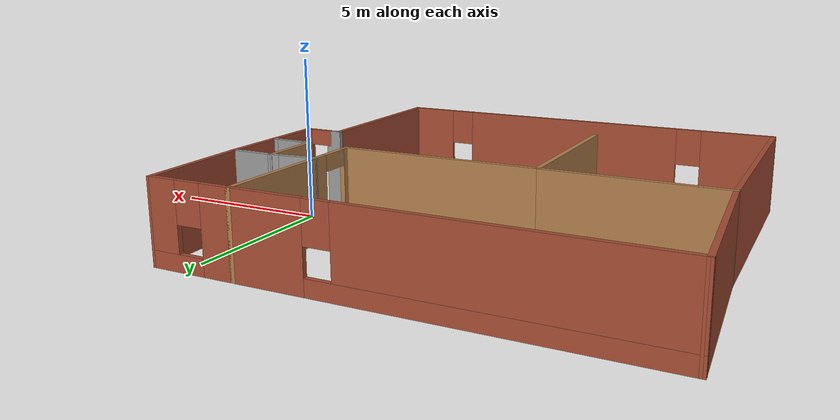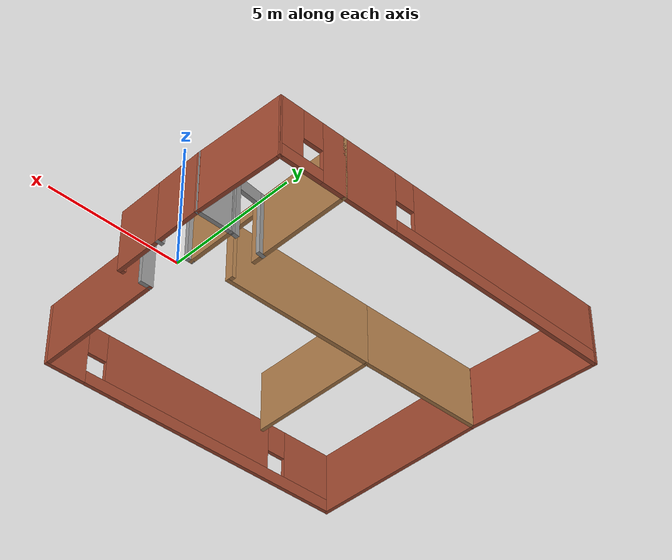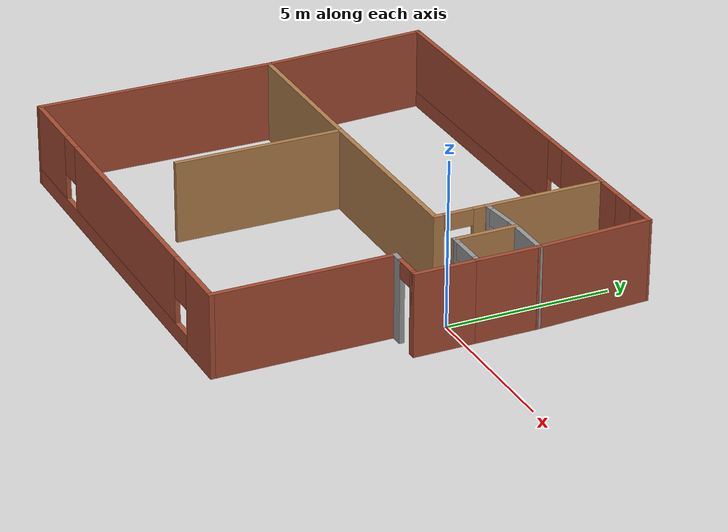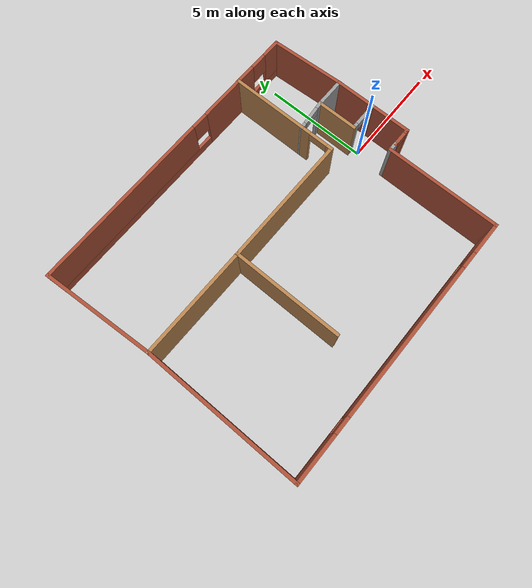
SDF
<?xml version='1.0'?>
<sdf version='1.6'>
  <model name='apt_64'>
    <pose frame=''>-6.11864 -0.586283 0 0 -0 0</pose>
    <link name='Wall_0'>
      <pose frame=''>6.76464 -0.909217 0 0 -0 3.14159</pose>
      <visual name='Wall_0_Visual_0'>
        <pose frame=''>-0.372611 0 1.25 0 -0 0</pose>
        <geometry>
          <box>
            <size>0.254778 0.15 2.5</size>
          </box>
        </geometry>
        <material>
          <script>
            <uri>file://media/materials/scripts/gazebo.material</uri>
            <name>Gazebo/Bricks</name>
          </script>
          <ambient>1 1 1 1</ambient>
        </material>
        <meta>
          <layer>0</layer>
        </meta>
      </visual>
      <collision name='Wall_0_Collision_0'>
        <geometry>
          <box>
            <size>0.254778 0.15 2.5</size>
          </box>
        </geometry>
        <pose frame=''>-0.372611 0 1.25 0 -0 0</pose>
      </collision>
      <visual name='Wall_0_Visual_1'>
        <pose frame=''>0.127389 0 2.25 0 -0 0</pose>
        <geometry>
          <box>
            <size>0.745222 0.15 0.5</size>
          </box>
        </geometry>
        <material>
          <script>
            <uri>file://media/materials/scripts/gazebo.material</uri>
            <name>Gazebo/Bricks</name>
          </script>
          <ambient>1 1 1 1</ambient>
        </material>
        <meta>
          <layer>0</layer>
        </meta>
      </visual>
      <collision name='Wall_0_Collision_1'>
        <geometry>
          <box>
            <size>0.745222 0.15 0.5</size>
          </box>
        </geometry>
        <pose frame=''>0.127389 0 2.25 0 -0 0</pose>
      </collision>
    </link>
    <link name='Wall_10'>
      <collision name='Wall_10_Collision'>
        <geometry>
          <box>
            <size>2 0.15 2.5</size>
          </box>
        </geometry>
        <pose frame=''>0 0 1.25 0 -0 0</pose>
      </collision>
      <visual name='Wall_10_Visual'>
        <pose frame=''>0 0 1.25 0 -0 0</pose>
        <geometry>
          <box>
            <size>2 0.15 2.5</size>
          </box>
        </geometry>
        <material>
          <script>
            <uri>file://media/materials/scripts/gazebo.material</uri>
            <name>Gazebo/Bricks</name>
          </script>
          <ambient>1 1 1 1</ambient>
        </material>
        <meta>
          <layer>0</layer>
        </meta>
      </visual>
      <pose frame=''>7.18964 1.86578 0 0 -0 1.5708</pose>
    </link>
    <link name='Wall_11'>
      <collision name='Wall_11_Collision'>
        <geometry>
          <box>
            <size>1.5 0.15 2.5</size>
          </box>
        </geometry>
        <pose frame=''>0 0 1.25 0 -0 0</pose>
      </collision>
      <visual name='Wall_11_Visual'>
        <pose frame=''>0 0 1.25 0 -0 0</pose>
        <geometry>
          <box>
            <size>1.5 0.15 2.5</size>
          </box>
        </geometry>
        <material>
          <script>
            <uri>file://media/materials/scripts/gazebo.material</uri>
            <name>Gazebo/Grey</name>
          </script>
          <ambient>1 1 1 1</ambient>
        </material>
        <meta>
          <layer>0</layer>
        </meta>
      </visual>
      <pose frame=''>6.51464 2.79078 0 0 -0 3.14159</pose>
    </link>
    <link name='Wall_12'>
      <collision name='Wall_12_Collision'>
        <geometry>
          <box>
            <size>2 0.15 2.5</size>
          </box>
        </geometry>
        <pose frame=''>0 0 1.25 0 -0 0</pose>
      </collision>
      <visual name='Wall_12_Visual'>
        <pose frame=''>0 0 1.25 0 -0 0</pose>
        <geometry>
          <box>
            <size>2 0.15 2.5</size>
          </box>
        </geometry>
        <material>
          <script>
            <uri>file://media/materials/scripts/gazebo.material</uri>
            <name>Gazebo/Wood</name>
          </script>
          <ambient>1 1 1 1</ambient>
        </material>
        <meta>
          <layer>0</layer>
        </meta>
      </visual>
      <pose frame=''>5.83964 1.86578 0 0 0 -1.5708</pose>
    </link>
    <link name='Wall_15'>
      <collision name='Wall_15_Collision'>
        <geometry>
          <box>
            <size>5.5 0.15 2.5</size>
          </box>
        </geometry>
        <pose frame=''>0 0 1.25 0 -0 0</pose>
      </collision>
      <visual name='Wall_15_Visual'>
        <pose frame=''>0 0 1.25 0 -0 0</pose>
        <geometry>
          <box>
            <size>5.5 0.15 2.5</size>
          </box>
        </geometry>
        <material>
          <script>
            <uri>file://media/materials/scripts/gazebo.material</uri>
            <name>Gazebo/Bricks</name>
          </script>
          <ambient>1 1 1 1</ambient>
        </material>
        <meta>
          <layer>0</layer>
        </meta>
      </visual>
      <pose frame=''>5.98964 -3.58422 0 0 0 -1.5708</pose>
    </link>
    <link name='Wall_18'>
      <pose frame=''>4.41121 1.85461 0 0 -0 1.5708</pose>
      <visual name='Wall_18_Visual_0'>
        <pose frame=''>-0.712699 0 1.25 0 -0 0</pose>
        <geometry>
          <box>
            <size>0.324603 0.15 2.5</size>
          </box>
        </geometry>
        <material>
          <script>
            <uri>file://media/materials/scripts/gazebo.material</uri>
            <name>Gazebo/Wood</name>
          </script>
          <ambient>1 1 1 1</ambient>
        </material>
        <meta>
          <layer>0</layer>
        </meta>
      </visual>
      <collision name='Wall_18_Collision_0'>
        <geometry>
          <box>
            <size>0.324603 0.15 2.5</size>
          </box>
        </geometry>
        <pose frame=''>-0.712699 0 1.25 0 -0 0</pose>
      </collision>
      <visual name='Wall_18_Visual_1'>
        <pose frame=''>0.612301 0 1.25 0 -0 0</pose>
        <geometry>
          <box>
            <size>0.525397 0.15 2.5</size>
          </box>
        </geometry>
        <material>
          <script>
            <uri>file://media/materials/scripts/gazebo.material</uri>
            <name>Gazebo/Wood</name>
          </script>
          <ambient>1 1 1 1</ambient>
        </material>
        <meta>
          <layer>0</layer>
        </meta>
      </visual>
      <collision name='Wall_18_Collision_1'>
        <geometry>
          <box>
            <size>0.525397 0.15 2.5</size>
          </box>
        </geometry>
        <pose frame=''>0.612301 0 1.25 0 -0 0</pose>
      </collision>
      <visual name='Wall_18_Visual_2'>
        <pose frame=''>-0.100397 0 2.25 0 -0 0</pose>
        <geometry>
          <box>
            <size>0.9 0.15 0.5</size>
          </box>
        </geometry>
        <material>
          <script>
            <uri>file://media/materials/scripts/gazebo.material</uri>
            <name>Gazebo/Wood</name>
          </script>
          <ambient>1 1 1 1</ambient>
        </material>
        <meta>
          <layer>0</layer>
        </meta>
      </visual>
      <collision name='Wall_18_Collision_2'>
        <geometry>
          <box>
            <size>0.9 0.15 0.5</size>
          </box>
        </geometry>
        <pose frame=''>-0.100397 0 2.25 0 -0 0</pose>
      </collision>
    </link>
    <link name='Wall_20'>
      <collision name='Wall_20_Collision'>
        <geometry>
          <box>
            <size>6.25 0.15 2.5</size>
          </box>
        </geometry>
        <pose frame=''>0 0 1.25 0 -0 0</pose>
      </collision>
      <visual name='Wall_20_Visual'>
        <pose frame=''>0 0 1.25 0 -0 0</pose>
        <geometry>
          <box>
            <size>6.25 0.15 2.5</size>
          </box>
        </geometry>
        <material>
          <script>
            <uri>file://media/materials/scripts/gazebo.material</uri>
            <name>Gazebo/Wood</name>
          </script>
          <ambient>1 1 1 1</ambient>
        </material>
        <meta>
          <layer>0</layer>
        </meta>
      </visual>
      <pose frame=''>1.36121 1.05461 0 0 -0 3.14159</pose>
    </link>
    <link name='Wall_22'>
      <pose frame=''>5.12542 2.7227 0 0 -0 0.095045</pose>
      <visual name='Wall_22_Visual_0'>
        <pose frame=''>-0.629635 0 1.25 0 -0 0</pose>
        <geometry>
          <box>
            <size>0.325627 0.15 2.5</size>
          </box>
        </geometry>
        <material>
          <script>
            <uri>file://media/materials/scripts/gazebo.material</uri>
            <name>Gazebo/Grey</name>
          </script>
          <ambient>1 1 1 1</ambient>
        </material>
        <meta>
          <layer>0</layer>
        </meta>
      </visual>
      <collision name='Wall_22_Collision_0'>
        <geometry>
          <box>
            <size>0.325627 0.15 2.5</size>
          </box>
        </geometry>
        <pose frame=''>-0.629635 0 1.25 0 -0 0</pose>
      </collision>
      <visual name='Wall_22_Visual_1'>
        <pose frame=''>0.612813 0 1.25 0 -0 0</pose>
        <geometry>
          <box>
            <size>0.359271 0.15 2.5</size>
          </box>
        </geometry>
        <material>
          <script>
            <uri>file://media/materials/scripts/gazebo.material</uri>
            <name>Gazebo/Grey</name>
          </script>
          <ambient>1 1 1 1</ambient>
        </material>
        <meta>
          <layer>0</layer>
        </meta>
      </visual>
      <collision name='Wall_22_Collision_1'>
        <geometry>
          <box>
            <size>0.359271 0.15 2.5</size>
          </box>
        </geometry>
        <pose frame=''>0.612813 0 1.25 0 -0 0</pose>
      </collision>
      <visual name='Wall_22_Visual_2'>
        <pose frame=''>-0.016822 0 2.25 0 -0 0</pose>
        <geometry>
          <box>
            <size>0.9 0.15 0.5</size>
          </box>
        </geometry>
        <material>
          <script>
            <uri>file://media/materials/scripts/gazebo.material</uri>
            <name>Gazebo/Grey</name>
          </script>
          <ambient>1 1 1 1</ambient>
        </material>
        <meta>
          <layer>0</layer>
        </meta>
      </visual>
      <collision name='Wall_22_Collision_2'>
        <geometry>
          <box>
            <size>0.9 0.15 0.5</size>
          </box>
        </geometry>
        <pose frame=''>-0.016822 0 2.25 0 -0 0</pose>
      </collision>
    </link>
    <link name='Wall_24'>
      <collision name='Wall_24_Collision'>
        <geometry>
          <box>
            <size>3.75 0.15 2.5</size>
          </box>
        </geometry>
        <pose frame=''>0 0 1.25 0 -0 0</pose>
      </collision>
      <visual name='Wall_24_Visual'>
        <pose frame=''>0 0 1.25 0 -0 0</pose>
        <geometry>
          <box>
            <size>3.75 0.15 2.5</size>
          </box>
        </geometry>
        <material>
          <script>
            <uri>file://media/materials/scripts/gazebo.material</uri>
            <name>Gazebo/Wood</name>
          </script>
          <ambient>1 1 1 1</ambient>
        </material>
        <meta>
          <layer>0</layer>
        </meta>
      </visual>
      <pose frame=''>4.41121 4.45461 0 0 -0 1.5708</pose>
    </link>
    <link name='Wall_25'>
      <pose frame=''>5.71121 6.25461 0 0 -0 0</pose>
      <visual name='Wall_25_Visual_0'>
        <pose frame=''>-0.872878 0 1.25 0 -0 0</pose>
        <geometry>
          <box>
            <size>1.00425 0.15 2.5</size>
          </box>
        </geometry>
        <material>
          <script>
            <uri>file://media/materials/scripts/gazebo.material</uri>
            <name>Gazebo/Bricks</name>
          </script>
          <ambient>1 1 1 1</ambient>
        </material>
        <meta>
          <layer>0</layer>
        </meta>
      </visual>
      <collision name='Wall_25_Collision_0'>
        <geometry>
          <box>
            <size>1.00425 0.15 2.5</size>
          </box>
        </geometry>
        <pose frame=''>-0.872878 0 1.25 0 -0 0</pose>
      </collision>
      <visual name='Wall_25_Visual_1'>
        <pose frame=''>0.502122 0 0.25 0 -0 0</pose>
        <geometry>
          <box>
            <size>1.74575 0.15 0.5</size>
          </box>
        </geometry>
        <material>
          <script>
            <uri>file://media/materials/scripts/gazebo.material</uri>
            <name>Gazebo/Bricks</name>
          </script>
          <ambient>1 1 1 1</ambient>
        </material>
        <meta>
          <layer>0</layer>
        </meta>
      </visual>
      <collision name='Wall_25_Collision_1'>
        <geometry>
          <box>
            <size>1.74575 0.15 0.5</size>
          </box>
        </geometry>
        <pose frame=''>0.502122 0 0.25 0 -0 0</pose>
      </collision>
      <visual name='Wall_25_Visual_2'>
        <pose frame=''>0.902122 0 1.5 0 -0 0</pose>
        <geometry>
          <box>
            <size>0.945755 0.15 2</size>
          </box>
        </geometry>
        <material>
          <script>
            <uri>file://media/materials/scripts/gazebo.material</uri>
            <name>Gazebo/Bricks</name>
          </script>
          <ambient>1 1 1 1</ambient>
        </material>
        <meta>
          <layer>0</layer>
        </meta>
      </visual>
      <collision name='Wall_25_Collision_2'>
        <geometry>
          <box>
            <size>0.945755 0.15 2</size>
          </box>
        </geometry>
        <pose frame=''>0.902122 0 1.5 0 -0 0</pose>
      </collision>
      <visual name='Wall_25_Visual_3'>
        <pose frame=''>0.029245 0 1.9 0 -0 0</pose>
        <geometry>
          <box>
            <size>0.8 0.15 1.2</size>
          </box>
        </geometry>
        <material>
          <script>
            <uri>file://media/materials/scripts/gazebo.material</uri>
            <name>Gazebo/Bricks</name>
          </script>
          <ambient>1 1 1 1</ambient>
        </material>
        <meta>
          <layer>0</layer>
        </meta>
      </visual>
      <collision name='Wall_25_Collision_3'>
        <geometry>
          <box>
            <size>0.8 0.15 1.2</size>
          </box>
        </geometry>
        <pose frame=''>0.029245 0 1.9 0 -0 0</pose>
      </collision>
    </link>
    <link name='Wall_26'>
      <collision name='Wall_26_Collision'>
        <geometry>
          <box>
            <size>3.61842 0.15 2.5</size>
          </box>
        </geometry>
        <pose frame=''>0 0 1.25 0 -0 0</pose>
      </collision>
      <visual name='Wall_26_Visual'>
        <pose frame=''>0 0 1.25 0 -0 0</pose>
        <geometry>
          <box>
            <size>3.61842 0.15 2.5</size>
          </box>
        </geometry>
        <material>
          <script>
            <uri>file://media/materials/scripts/gazebo.material</uri>
            <name>Gazebo/Bricks</name>
          </script>
          <ambient>1 1 1 1</ambient>
        </material>
        <meta>
          <layer>0</layer>
        </meta>
      </visual>
      <pose frame=''>7.10043 4.5227 0 0 0 -1.51933</pose>
    </link>
    <link name='Wall_28'>
      <pose frame=''>-0.435364 -6.25922 0 0 -0 3.14159</pose>
      <visual name='Wall_28_Visual_0'>
        <pose frame=''>-5.69839 0 1.25 0 -0 0</pose>
        <geometry>
          <box>
            <size>1.60322 0.15 2.5</size>
          </box>
        </geometry>
        <material>
          <script>
            <uri>file://media/materials/scripts/gazebo.material</uri>
            <name>Gazebo/Bricks</name>
          </script>
          <ambient>1 1 1 1</ambient>
        </material>
        <meta>
          <layer>0</layer>
        </meta>
      </visual>
      <collision name='Wall_28_Collision_0'>
        <geometry>
          <box>
            <size>1.60322 0.15 2.5</size>
          </box>
        </geometry>
        <pose frame=''>-5.69839 0 1.25 0 -0 0</pose>
      </collision>
      <visual name='Wall_28_Visual_1'>
        <pose frame=''>0.801611 0 0.25 0 -0 0</pose>
        <geometry>
          <box>
            <size>11.3968 0.15 0.5</size>
          </box>
        </geometry>
        <material>
          <script>
            <uri>file://media/materials/scripts/gazebo.material</uri>
            <name>Gazebo/Bricks</name>
          </script>
          <ambient>1 1 1 1</ambient>
        </material>
        <meta>
          <layer>0</layer>
        </meta>
      </visual>
      <collision name='Wall_28_Collision_1'>
        <geometry>
          <box>
            <size>11.3968 0.15 0.5</size>
          </box>
        </geometry>
        <pose frame=''>0.801611 0 0.25 0 -0 0</pose>
      </collision>
      <visual name='Wall_28_Visual_2'>
        <pose frame=''>-0.351632 0 1.5 0 -0 0</pose>
        <geometry>
          <box>
            <size>7.49029 0.15 2</size>
          </box>
        </geometry>
        <material>
          <script>
            <uri>file://media/materials/scripts/gazebo.material</uri>
            <name>Gazebo/Bricks</name>
          </script>
          <ambient>1 1 1 1</ambient>
        </material>
        <meta>
          <layer>0</layer>
        </meta>
      </visual>
      <collision name='Wall_28_Collision_2'>
        <geometry>
          <box>
            <size>7.49029 0.15 2</size>
          </box>
        </geometry>
        <pose frame=''>-0.351632 0 1.5 0 -0 0</pose>
      </collision>
      <visual name='Wall_28_Visual_3'>
        <pose frame=''>5.34676 0 1.5 0 -0 0</pose>
        <geometry>
          <box>
            <size>2.30649 0.15 2</size>
          </box>
        </geometry>
        <material>
          <script>
            <uri>file://media/materials/scripts/gazebo.material</uri>
            <name>Gazebo/Bricks</name>
          </script>
          <ambient>1 1 1 1</ambient>
        </material>
        <meta>
          <layer>0</layer>
        </meta>
      </visual>
      <collision name='Wall_28_Collision_3'>
        <geometry>
          <box>
            <size>2.30649 0.15 2</size>
          </box>
        </geometry>
        <pose frame=''>5.34676 0 1.5 0 -0 0</pose>
      </collision>
      <visual name='Wall_28_Visual_4'>
        <pose frame=''>-4.49678 0 1.9 0 -0 0</pose>
        <geometry>
          <box>
            <size>0.8 0.15 1.2</size>
          </box>
        </geometry>
        <material>
          <script>
            <uri>file://media/materials/scripts/gazebo.material</uri>
            <name>Gazebo/Bricks</name>
          </script>
          <ambient>1 1 1 1</ambient>
        </material>
        <meta>
          <layer>0</layer>
        </meta>
      </visual>
      <collision name='Wall_28_Collision_4'>
        <geometry>
          <box>
            <size>0.8 0.15 1.2</size>
          </box>
        </geometry>
        <pose frame=''>-4.49678 0 1.9 0 -0 0</pose>
      </collision>
      <visual name='Wall_28_Visual_5'>
        <pose frame=''>3.79351 0 1.9 0 -0 0</pose>
        <geometry>
          <box>
            <size>0.8 0.15 1.2</size>
          </box>
        </geometry>
        <material>
          <script>
            <uri>file://media/materials/scripts/gazebo.material</uri>
            <name>Gazebo/Bricks</name>
          </script>
          <ambient>1 1 1 1</ambient>
        </material>
        <meta>
          <layer>0</layer>
        </meta>
      </visual>
      <collision name='Wall_28_Collision_5'>
        <geometry>
          <box>
            <size>0.8 0.15 1.2</size>
          </box>
        </geometry>
        <pose frame=''>3.79351 0 1.9 0 -0 0</pose>
      </collision>
    </link>
    <link name='Wall_3'>
      <collision name='Wall_3_Collision'>
        <geometry>
          <box>
            <size>2 0.15 2.5</size>
          </box>
        </geometry>
        <pose frame=''>0 0 1.25 0 -0 0</pose>
      </collision>
      <visual name='Wall_3_Visual'>
        <pose frame=''>0 0 1.25 0 -0 0</pose>
        <geometry>
          <box>
            <size>2 0.15 2.5</size>
          </box>
        </geometry>
        <material>
          <script>
            <uri>file://media/materials/scripts/gazebo.material</uri>
            <name>Gazebo/Bricks</name>
          </script>
          <ambient>1 1 1 1</ambient>
        </material>
        <meta>
          <layer>0</layer>
        </meta>
      </visual>
      <pose frame=''>7.18964 0.015783 0 0 -0 1.5708</pose>
    </link>
    <link name='Wall_30'>
      <collision name='Wall_30_Collision'>
        <geometry>
          <box>
            <size>5.25 0.15 2.5</size>
          </box>
        </geometry>
        <pose frame=''>0 0 1.25 0 -0 0</pose>
      </collision>
      <visual name='Wall_30_Visual'>
        <pose frame=''>0 0 1.25 0 -0 0</pose>
        <geometry>
          <box>
            <size>5.25 0.15 2.5</size>
          </box>
        </geometry>
        <material>
          <script>
            <uri>file://media/materials/scripts/gazebo.material</uri>
            <name>Gazebo/Wood</name>
          </script>
          <ambient>1 1 1 1</ambient>
        </material>
        <meta>
          <layer>0</layer>
        </meta>
      </visual>
      <pose frame=''>-1.68879 -1.49539 0 0 0 -1.5708</pose>
    </link>
    <link name='Wall_33'>
      <collision name='Wall_33_Collision'>
        <geometry>
          <box>
            <size>7.5 0.15 2.5</size>
          </box>
        </geometry>
        <pose frame=''>0 0 1.25 0 -0 0</pose>
      </collision>
      <visual name='Wall_33_Visual'>
        <pose frame=''>0 0 1.25 0 -0 0</pose>
        <geometry>
          <box>
            <size>7.5 0.15 2.5</size>
          </box>
        </geometry>
        <material>
          <script>
            <uri>file://media/materials/scripts/gazebo.material</uri>
            <name>Gazebo/Bricks</name>
          </script>
          <ambient>1 1 1 1</ambient>
        </material>
        <meta>
          <layer>0</layer>
        </meta>
      </visual>
      <pose frame=''>-6.86036 -2.58422 0 0 -0 1.5708</pose>
    </link>
    <link name='Wall_35'>
      <collision name='Wall_35_Collision'>
        <geometry>
          <box>
            <size>5.3217 0.15 2.5</size>
          </box>
        </geometry>
        <pose frame=''>0 0 1.25 0 -0 0</pose>
      </collision>
      <visual name='Wall_35_Visual'>
        <pose frame=''>0 0 1.25 0 -0 0</pose>
        <geometry>
          <box>
            <size>5.3217 0.15 2.5</size>
          </box>
        </geometry>
        <material>
          <script>
            <uri>file://media/materials/scripts/gazebo.material</uri>
            <name>Gazebo/Wood</name>
          </script>
          <ambient>1 1 1 1</ambient>
        </material>
        <meta>
          <layer>0</layer>
        </meta>
      </visual>
      <pose frame=''>-4.27457 1.0727 0 0 0 -0.006995</pose>
    </link>
    <link name='Wall_37'>
      <pose frame=''>-1.38879 6.25461 0 0 -0 3.14159</pose>
      <visual name='Wall_37_Visual_0'>
        <pose frame=''>-4.74324 0 1.25 0 -0 0</pose>
        <geometry>
          <box>
            <size>2.26353 0.15 2.5</size>
          </box>
        </geometry>
        <material>
          <script>
            <uri>file://media/materials/scripts/gazebo.material</uri>
            <name>Gazebo/Bricks</name>
          </script>
          <ambient>1 1 1 1</ambient>
        </material>
        <meta>
          <layer>0</layer>
        </meta>
      </visual>
      <collision name='Wall_37_Collision_0'>
        <geometry>
          <box>
            <size>2.26353 0.15 2.5</size>
          </box>
        </geometry>
        <pose frame=''>-4.74324 0 1.25 0 -0 0</pose>
      </collision>
      <visual name='Wall_37_Visual_1'>
        <pose frame=''>1.13176 0 0.25 0 -0 0</pose>
        <geometry>
          <box>
            <size>9.48647 0.15 0.5</size>
          </box>
        </geometry>
        <material>
          <script>
            <uri>file://media/materials/scripts/gazebo.material</uri>
            <name>Gazebo/Bricks</name>
          </script>
          <ambient>1 1 1 1</ambient>
        </material>
        <meta>
          <layer>0</layer>
        </meta>
      </visual>
      <collision name='Wall_37_Collision_1'>
        <geometry>
          <box>
            <size>9.48647 0.15 0.5</size>
          </box>
        </geometry>
        <pose frame=''>1.13176 0 0.25 0 -0 0</pose>
      </collision>
      <visual name='Wall_37_Visual_2'>
        <pose frame=''>1.53177 0 1.5 0 -0 0</pose>
        <geometry>
          <box>
            <size>8.68647 0.15 2</size>
          </box>
        </geometry>
        <material>
          <script>
            <uri>file://media/materials/scripts/gazebo.material</uri>
            <name>Gazebo/Bricks</name>
          </script>
          <ambient>1 1 1 1</ambient>
        </material>
        <meta>
          <layer>0</layer>
        </meta>
      </visual>
      <collision name='Wall_37_Collision_2'>
        <geometry>
          <box>
            <size>8.68647 0.15 2</size>
          </box>
        </geometry>
        <pose frame=''>1.53177 0 1.5 0 -0 0</pose>
      </collision>
      <visual name='Wall_37_Visual_3'>
        <pose frame=''>-3.21147 0 1.9 0 -0 0</pose>
        <geometry>
          <box>
            <size>0.8 0.15 1.2</size>
          </box>
        </geometry>
        <material>
          <script>
            <uri>file://media/materials/scripts/gazebo.material</uri>
            <name>Gazebo/Bricks</name>
          </script>
          <ambient>1 1 1 1</ambient>
        </material>
        <meta>
          <layer>0</layer>
        </meta>
      </visual>
      <collision name='Wall_37_Collision_3'>
        <geometry>
          <box>
            <size>0.8 0.15 1.2</size>
          </box>
        </geometry>
        <pose frame=''>-3.21147 0 1.9 0 -0 0</pose>
      </collision>
    </link>
    <link name='Wall_38'>
      <collision name='Wall_38_Collision'>
        <geometry>
          <box>
            <size>5.32426 0.15 2.5</size>
          </box>
        </geometry>
        <pose frame=''>0 0 1.25 0 -0 0</pose>
      </collision>
      <visual name='Wall_38_Visual'>
        <pose frame=''>0 0 1.25 0 -0 0</pose>
        <geometry>
          <box>
            <size>5.32426 0.15 2.5</size>
          </box>
        </geometry>
        <material>
          <script>
            <uri>file://media/materials/scripts/gazebo.material</uri>
            <name>Gazebo/Bricks</name>
          </script>
          <ambient>1 1 1 1</ambient>
        </material>
        <meta>
          <layer>0</layer>
        </meta>
      </visual>
      <pose frame=''>-7.02457 3.6727 0 0 0 -1.50728</pose>
    </link>
    <link name='Wall_5'>
      <pose frame=''>6.51464 0.940783 0 0 -0 3.14159</pose>
      <visual name='Wall_5_Visual_0'>
        <pose frame=''>-0.609386 0 1.25 0 -0 0</pose>
        <geometry>
          <box>
            <size>0.281227 0.15 2.5</size>
          </box>
        </geometry>
        <material>
          <script>
            <uri>file://media/materials/scripts/gazebo.material</uri>
            <name>Gazebo/Grey</name>
          </script>
          <ambient>1 1 1 1</ambient>
        </material>
        <meta>
          <layer>0</layer>
        </meta>
      </visual>
      <collision name='Wall_5_Collision_0'>
        <geometry>
          <box>
            <size>0.281227 0.15 2.5</size>
          </box>
        </geometry>
        <pose frame=''>-0.609386 0 1.25 0 -0 0</pose>
      </collision>
      <visual name='Wall_5_Visual_1'>
        <pose frame=''>0.590614 0 1.25 0 -0 0</pose>
        <geometry>
          <box>
            <size>0.318773 0.15 2.5</size>
          </box>
        </geometry>
        <material>
          <script>
            <uri>file://media/materials/scripts/gazebo.material</uri>
            <name>Gazebo/Grey</name>
          </script>
          <ambient>1 1 1 1</ambient>
        </material>
        <meta>
          <layer>0</layer>
        </meta>
      </visual>
      <collision name='Wall_5_Collision_1'>
        <geometry>
          <box>
            <size>0.318773 0.15 2.5</size>
          </box>
        </geometry>
        <pose frame=''>0.590614 0 1.25 0 -0 0</pose>
      </collision>
      <visual name='Wall_5_Visual_2'>
        <pose frame=''>-0.018773 0 2.25 0 -0 0</pose>
        <geometry>
          <box>
            <size>0.9 0.15 0.5</size>
          </box>
        </geometry>
        <material>
          <script>
            <uri>file://media/materials/scripts/gazebo.material</uri>
            <name>Gazebo/Grey</name>
          </script>
          <ambient>1 1 1 1</ambient>
        </material>
        <meta>
          <layer>0</layer>
        </meta>
      </visual>
      <collision name='Wall_5_Collision_2'>
        <geometry>
          <box>
            <size>0.9 0.15 0.5</size>
          </box>
        </geometry>
        <pose frame=''>-0.018773 0 2.25 0 -0 0</pose>
      </collision>
    </link>
    <link name='Wall_7'>
      <collision name='Wall_7_Collision'>
        <geometry>
          <box>
            <size>0.5 0.15 2.5</size>
          </box>
        </geometry>
        <pose frame=''>0 0 1.25 0 -0 0</pose>
      </collision>
      <visual name='Wall_7_Visual'>
        <pose frame=''>0 0 1.25 0 -0 0</pose>
        <geometry>
          <box>
            <size>0.5 0.15 2.5</size>
          </box>
        </geometry>
        <material>
          <script>
            <uri>file://media/materials/scripts/gazebo.material</uri>
            <name>Gazebo/Grey</name>
          </script>
          <ambient>1 1 1 1</ambient>
        </material>
        <meta>
          <layer>0</layer>
        </meta>
      </visual>
      <pose frame=''>6.16464 -0.909217 0 0 -0 3.14159</pose>
    </link>
    <static>1</static>
  </model>
</sdf>
